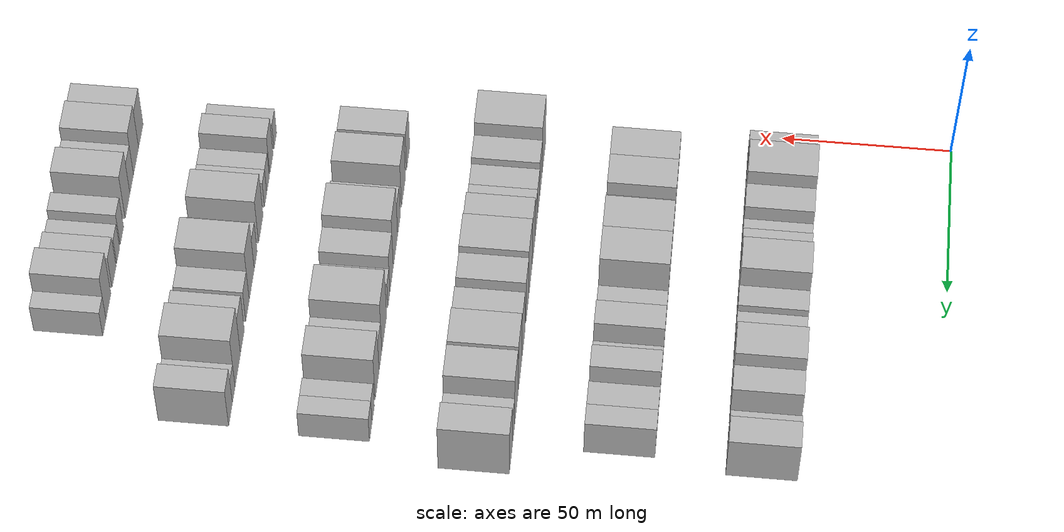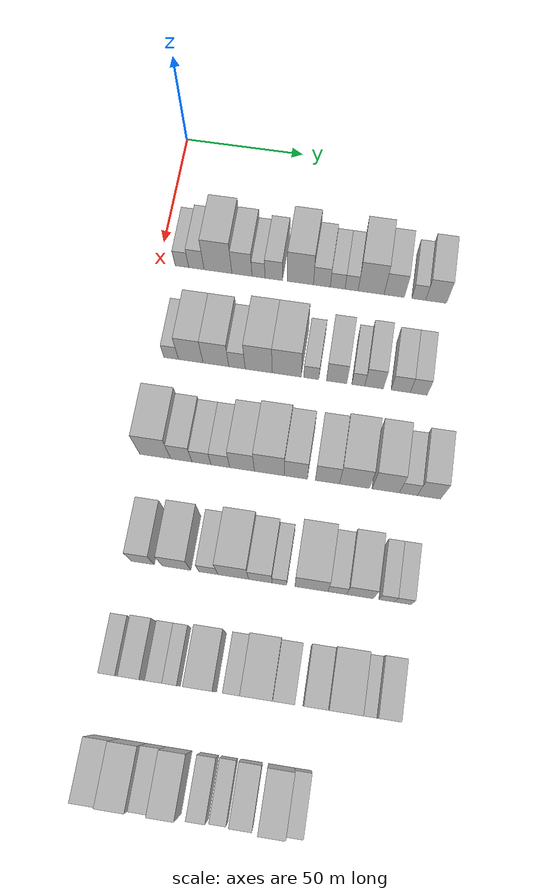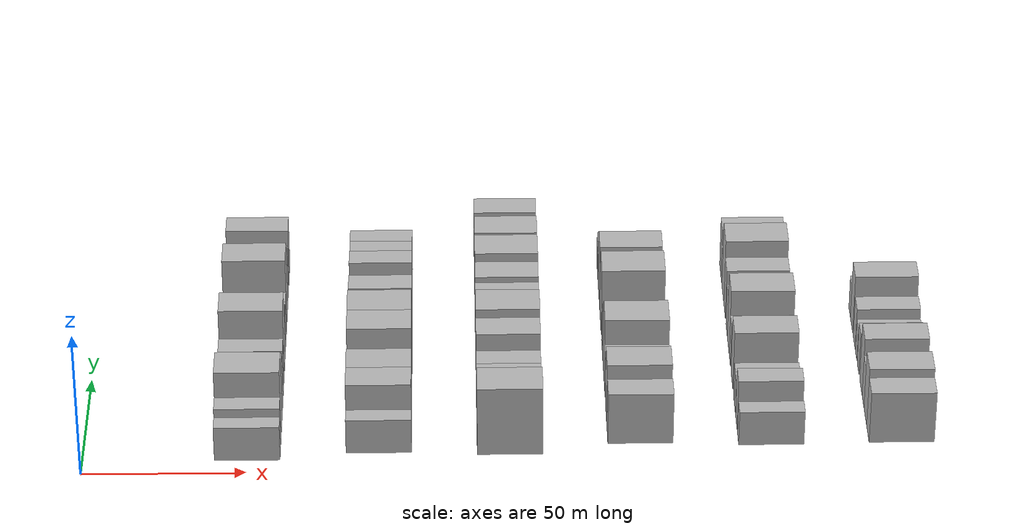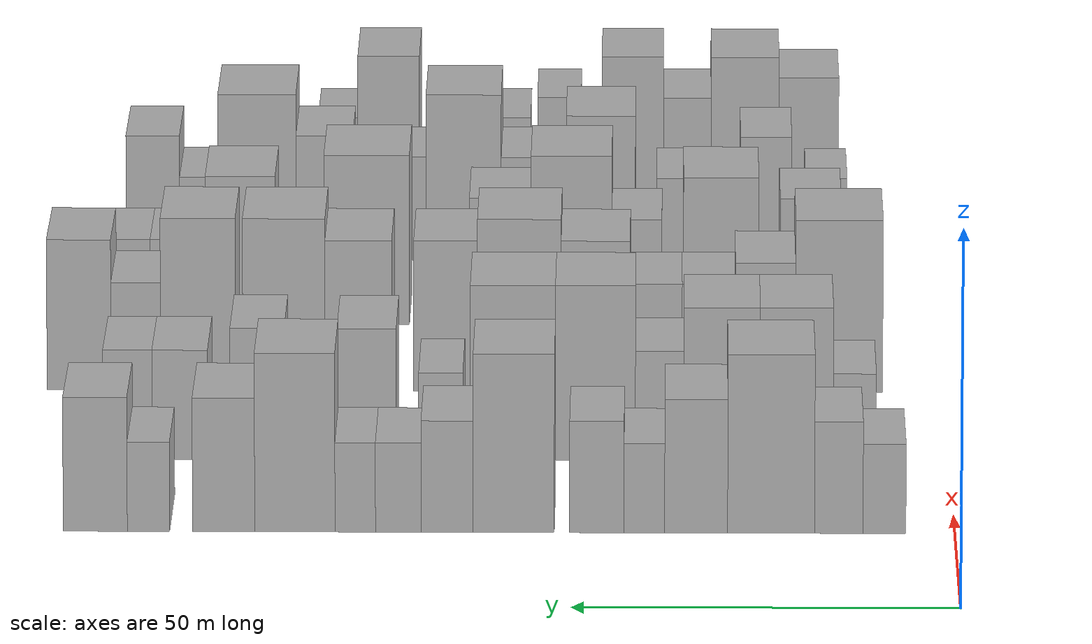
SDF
<sdf version="1.6">
 <world name="default">
  <model name="building_74">
   <static>1</static>
   <pose>50.0000 9.2794 0 0.000000 0.000000 0.000000</pose>
   <link name="link">
    <pose>0 0 6.00 0 0 0</pose>
    <collision name="collision"><geometry><box><size>20.0000 5.6171 12.0000</size></box></geometry></collision>
    <visual name="visual">
     <cast_shadows>0</cast_shadows>
     <geometry><box><size>20.0000 5.6171 12.0000</size></box></geometry>
     <material>
      <script>
       <uri>model://HANNAS_wall/materials/scripts</uri>
       <uri>model://HANNAS_wall/materials/textures</uri>
       <name>vrc/HANNAS_wall</name>
      </script>
     </material>
    </visual>
   </link>
  </model>
  <model name="building_75">
   <static>1</static>
   <pose>50.0000 15.2581 0 0.000000 0.000000 0.000000</pose>
   <link name="link">
    <pose>0 0 7.50 0 0 0</pose>
    <collision name="collision"><geometry><box><size>20.0000 6.3403 15.0000</size></box></geometry></collision>
    <visual name="visual">
     <cast_shadows>0</cast_shadows>
     <geometry><box><size>20.0000 6.3403 15.0000</size></box></geometry>
     <material>
      <script>
       <uri>model://HANNAS_wall/materials/scripts</uri>
       <uri>model://HANNAS_wall/materials/textures</uri>
       <name>vrc/HANNAS_wall</name>
      </script>
     </material>
    </visual>
   </link>
  </model>
  <model name="building_76">
   <static>1</static>
   <pose>50.0000 24.1122 0 0.000000 0.000000 0.000000</pose>
   <link name="link">
    <pose>0 0 12.00 0 0 0</pose>
    <collision name="collision"><geometry><box><size>20.0000 11.3678 24.0000</size></box></geometry></collision>
    <visual name="visual">
     <cast_shadows>0</cast_shadows>
     <geometry><box><size>20.0000 11.3678 24.0000</size></box></geometry>
     <material>
      <script>
       <uri>model://HANNAS_wall/materials/scripts</uri>
       <uri>model://HANNAS_wall/materials/textures</uri>
       <name>vrc/HANNAS_wall</name>
      </script>
     </material>
    </visual>
   </link>
  </model>
  <model name="building_77">
   <static>1</static>
   <pose>50.0000 33.9172 0 0.000000 0.000000 0.000000</pose>
   <link name="link">
    <pose>0 0 9.00 0 0 0</pose>
    <collision name="collision"><geometry><box><size>20.0000 8.2422 18.0000</size></box></geometry></collision>
    <visual name="visual">
     <cast_shadows>0</cast_shadows>
     <geometry><box><size>20.0000 8.2422 18.0000</size></box></geometry>
     <material>
      <script>
       <uri>model://HANNAS_wall/materials/scripts</uri>
       <uri>model://HANNAS_wall/materials/textures</uri>
       <name>vrc/HANNAS_wall</name>
      </script>
     </material>
    </visual>
   </link>
  </model>
  <model name="building_78">
   <static>1</static>
   <pose>50.0000 40.6999 0 0.000000 0.000000 0.000000</pose>
   <link name="link">
    <pose>0 0 6.00 0 0 0</pose>
    <collision name="collision"><geometry><box><size>20.0000 5.3231 12.0000</size></box></geometry></collision>
    <visual name="visual">
     <cast_shadows>0</cast_shadows>
     <geometry><box><size>20.0000 5.3231 12.0000</size></box></geometry>
     <material>
      <script>
       <uri>model://HANNAS_wall/materials/scripts</uri>
       <uri>model://HANNAS_wall/materials/textures</uri>
       <name>vrc/HANNAS_wall</name>
      </script>
     </material>
    </visual>
   </link>
  </model>
  <model name="building_79">
   <static>1</static>
   <pose>50.0000 46.9219 0 0.000000 0.000000 0.000000</pose>
   <link name="link">
    <pose>0 0 7.50 0 0 0</pose>
    <collision name="collision"><geometry><box><size>20.0000 7.1209 15.0000</size></box></geometry></collision>
    <visual name="visual">
     <cast_shadows>0</cast_shadows>
     <geometry><box><size>20.0000 7.1209 15.0000</size></box></geometry>
     <material>
      <script>
       <uri>model://HANNAS_wall/materials/scripts</uri>
       <uri>model://HANNAS_wall/materials/textures</uri>
       <name>vrc/HANNAS_wall</name>
      </script>
     </material>
    </visual>
   </link>
  </model>
  <model name="building_80">
   <static>1</static>
   <pose>50.0000 57.7926 0 0.000000 0.000000 0.000000</pose>
   <link name="link">
    <pose>0 0 12.00 0 0 0</pose>
    <collision name="collision"><geometry><box><size>20.0000 10.6205 24.0000</size></box></geometry></collision>
    <visual name="visual">
     <cast_shadows>0</cast_shadows>
     <geometry><box><size>20.0000 10.6205 24.0000</size></box></geometry>
     <material>
      <script>
       <uri>model://HANNAS_wall/materials/scripts</uri>
       <uri>model://HANNAS_wall/materials/textures</uri>
       <name>vrc/HANNAS_wall</name>
      </script>
     </material>
    </visual>
   </link>
  </model>
  <model name="building_81">
   <static>1</static>
   <pose>50.0000 66.5133 0 0.000000 0.000000 0.000000</pose>
   <link name="link">
    <pose>0 0 7.50 0 0 0</pose>
    <collision name="collision"><geometry><box><size>20.0000 6.8208 15.0000</size></box></geometry></collision>
    <visual name="visual">
     <cast_shadows>0</cast_shadows>
     <geometry><box><size>20.0000 6.8208 15.0000</size></box></geometry>
     <material>
      <script>
       <uri>model://HANNAS_wall/materials/scripts</uri>
       <uri>model://HANNAS_wall/materials/textures</uri>
       <name>vrc/HANNAS_wall</name>
      </script>
     </material>
    </visual>
   </link>
  </model>
  <model name="building_82">
   <static>1</static>
   <pose>50.0000 72.9092 0 0.000000 0.000000 0.000000</pose>
   <link name="link">
    <pose>0 0 6.00 0 0 0</pose>
    <collision name="collision"><geometry><box><size>20.0000 5.9709 12.0000</size></box></geometry></collision>
    <visual name="visual">
     <cast_shadows>0</cast_shadows>
     <geometry><box><size>20.0000 5.9709 12.0000</size></box></geometry>
     <material>
      <script>
       <uri>model://HANNAS_wall/materials/scripts</uri>
       <uri>model://HANNAS_wall/materials/textures</uri>
       <name>vrc/HANNAS_wall</name>
      </script>
     </material>
    </visual>
   </link>
  </model>
  <model name="building_83">
   <static>1</static>
   <pose>50.0000 78.5429 0 0.000000 0.000000 0.000000</pose>
   <link name="link">
    <pose>0 0 6.00 0 0 0</pose>
    <collision name="collision"><geometry><box><size>20.0000 5.2966 12.0000</size></box></geometry></collision>
    <visual name="visual">
     <cast_shadows>0</cast_shadows>
     <geometry><box><size>20.0000 5.2966 12.0000</size></box></geometry>
     <material>
      <script>
       <uri>model://HANNAS_wall/materials/scripts</uri>
       <uri>model://HANNAS_wall/materials/textures</uri>
       <name>vrc/HANNAS_wall</name>
      </script>
     </material>
    </visual>
   </link>
  </model>
  <model name="building_84">
   <static>1</static>
   <pose>50.0000 86.4467 0 0.000000 0.000000 0.000000</pose>
   <link name="link">
    <pose>0 0 12.00 0 0 0</pose>
    <collision name="collision"><geometry><box><size>20.0000 10.5110 24.0000</size></box></geometry></collision>
    <visual name="visual">
     <cast_shadows>0</cast_shadows>
     <geometry><box><size>20.0000 10.5110 24.0000</size></box></geometry>
     <material>
      <script>
       <uri>model://HANNAS_wall/materials/scripts</uri>
       <uri>model://HANNAS_wall/materials/textures</uri>
       <name>vrc/HANNAS_wall</name>
      </script>
     </material>
    </visual>
   </link>
  </model>
  <model name="building_85">
   <static>1</static>
   <pose>50.0000 95.7731 0 0.000000 0.000000 0.000000</pose>
   <link name="link">
    <pose>0 0 9.00 0 0 0</pose>
    <collision name="collision"><geometry><box><size>20.0000 8.1418 18.0000</size></box></geometry></collision>
    <visual name="visual">
     <cast_shadows>0</cast_shadows>
     <geometry><box><size>20.0000 8.1418 18.0000</size></box></geometry>
     <material>
      <script>
       <uri>model://HANNAS_wall/materials/scripts</uri>
       <uri>model://HANNAS_wall/materials/textures</uri>
       <name>vrc/HANNAS_wall</name>
      </script>
     </material>
    </visual>
   </link>
  </model>
  <model name="building_86">
   <static>1</static>
   <pose>50.0000 105.6185 0 0.000000 0.000000 0.000000</pose>
   <link name="link">
    <pose>0 0 6.00 0 0 0</pose>
    <collision name="collision"><geometry><box><size>20.0000 5.5490 12.0000</size></box></geometry></collision>
    <visual name="visual">
     <cast_shadows>0</cast_shadows>
     <geometry><box><size>20.0000 5.5490 12.0000</size></box></geometry>
     <material>
      <script>
       <uri>model://HANNAS_wall/materials/scripts</uri>
       <uri>model://HANNAS_wall/materials/textures</uri>
       <name>vrc/HANNAS_wall</name>
      </script>
     </material>
    </visual>
   </link>
  </model>
  <model name="building_87">
   <static>1</static>
   <pose>50.0000 112.5835 0 0.000000 0.000000 0.000000</pose>
   <link name="link">
    <pose>0 0 9.00 0 0 0</pose>
    <collision name="collision"><geometry><box><size>20.0000 8.3809 18.0000</size></box></geometry></collision>
    <visual name="visual">
     <cast_shadows>0</cast_shadows>
     <geometry><box><size>20.0000 8.3809 18.0000</size></box></geometry>
     <material>
      <script>
       <uri>model://HANNAS_wall/materials/scripts</uri>
       <uri>model://HANNAS_wall/materials/textures</uri>
       <name>vrc/HANNAS_wall</name>
      </script>
     </material>
    </visual>
   </link>
  </model>
  <model name="building_210">
   <static>1</static>
   <pose>90.0000 12.6955 0 0.000000 0.000000 0.000000</pose>
   <link name="link">
    <pose>0 0 6.00 0 0 0</pose>
    <collision name="collision"><geometry><box><size>20.0000 5.7510 12.0000</size></box></geometry></collision>
    <visual name="visual">
     <cast_shadows>0</cast_shadows>
     <geometry><box><size>20.0000 5.7510 12.0000</size></box></geometry>
     <material>
      <script>
       <uri>model://HANNAS_wall/materials/scripts</uri>
       <uri>model://HANNAS_wall/materials/textures</uri>
       <name>vrc/HANNAS_wall</name>
      </script>
     </material>
    </visual>
   </link>
  </model>
  <model name="building_211">
   <static>1</static>
   <pose>90.0000 20.4545 0 0.000000 0.000000 0.000000</pose>
   <link name="link">
    <pose>0 0 10.50 0 0 0</pose>
    <collision name="collision"><geometry><box><size>20.0000 9.7669 21.0000</size></box></geometry></collision>
    <visual name="visual">
     <cast_shadows>0</cast_shadows>
     <geometry><box><size>20.0000 9.7669 21.0000</size></box></geometry>
     <material>
      <script>
       <uri>model://HANNAS_wall/materials/scripts</uri>
       <uri>model://HANNAS_wall/materials/textures</uri>
       <name>vrc/HANNAS_wall</name>
      </script>
     </material>
    </visual>
   </link>
  </model>
  <model name="building_212">
   <static>1</static>
   <pose>90.0000 30.4173 0 0.000000 0.000000 0.000000</pose>
   <link name="link">
    <pose>0 0 10.50 0 0 0</pose>
    <collision name="collision"><geometry><box><size>20.0000 10.1586 21.0000</size></box></geometry></collision>
    <visual name="visual">
     <cast_shadows>0</cast_shadows>
     <geometry><box><size>20.0000 10.1586 21.0000</size></box></geometry>
     <material>
      <script>
       <uri>model://HANNAS_wall/materials/scripts</uri>
       <uri>model://HANNAS_wall/materials/textures</uri>
       <name>vrc/HANNAS_wall</name>
      </script>
     </material>
    </visual>
   </link>
  </model>
  <model name="building_213">
   <static>1</static>
   <pose>90.0000 38.7382 0 0.000000 0.000000 0.000000</pose>
   <link name="link">
    <pose>0 0 7.50 0 0 0</pose>
    <collision name="collision"><geometry><box><size>20.0000 6.4833 15.0000</size></box></geometry></collision>
    <visual name="visual">
     <cast_shadows>0</cast_shadows>
     <geometry><box><size>20.0000 6.4833 15.0000</size></box></geometry>
     <material>
      <script>
       <uri>model://HANNAS_wall/materials/scripts</uri>
       <uri>model://HANNAS_wall/materials/textures</uri>
       <name>vrc/HANNAS_wall</name>
      </script>
     </material>
    </visual>
   </link>
  </model>
  <model name="building_214">
   <static>1</static>
   <pose>90.0000 47.3163 0 0.000000 0.000000 0.000000</pose>
   <link name="link">
    <pose>0 0 12.00 0 0 0</pose>
    <collision name="collision"><geometry><box><size>20.0000 10.6729 24.0000</size></box></geometry></collision>
    <visual name="visual">
     <cast_shadows>0</cast_shadows>
     <geometry><box><size>20.0000 10.6729 24.0000</size></box></geometry>
     <material>
      <script>
       <uri>model://HANNAS_wall/materials/scripts</uri>
       <uri>model://HANNAS_wall/materials/textures</uri>
       <name>vrc/HANNAS_wall</name>
      </script>
     </material>
    </visual>
   </link>
  </model>
  <model name="building_215">
   <static>1</static>
   <pose>90.0000 58.3319 0 0.000000 0.000000 0.000000</pose>
   <link name="link">
    <pose>0 0 12.00 0 0 0</pose>
    <collision name="collision"><geometry><box><size>20.0000 11.3584 24.0000</size></box></geometry></collision>
    <visual name="visual">
     <cast_shadows>0</cast_shadows>
     <geometry><box><size>20.0000 11.3584 24.0000</size></box></geometry>
     <material>
      <script>
       <uri>model://HANNAS_wall/materials/scripts</uri>
       <uri>model://HANNAS_wall/materials/textures</uri>
       <name>vrc/HANNAS_wall</name>
      </script>
     </material>
    </visual>
   </link>
  </model>
  <model name="building_216">
   <static>1</static>
   <pose>90.0000 67.9603 0 0.000000 0.000000 0.000000</pose>
   <link name="link">
    <pose>0 0 6.00 0 0 0</pose>
    <collision name="collision"><geometry><box><size>20.0000 5.8984 12.0000</size></box></geometry></collision>
    <visual name="visual">
     <cast_shadows>0</cast_shadows>
     <geometry><box><size>20.0000 5.8984 12.0000</size></box></geometry>
     <material>
      <script>
       <uri>model://HANNAS_wall/materials/scripts</uri>
       <uri>model://HANNAS_wall/materials/textures</uri>
       <name>vrc/HANNAS_wall</name>
      </script>
     </material>
    </visual>
   </link>
  </model>
  <model name="building_217">
   <static>1</static>
   <pose>90.0000 77.8638 0 0.000000 0.000000 0.000000</pose>
   <link name="link">
    <pose>0 0 9.00 0 0 0</pose>
    <collision name="collision"><geometry><box><size>20.0000 7.9086 18.0000</size></box></geometry></collision>
    <visual name="visual">
     <cast_shadows>0</cast_shadows>
     <geometry><box><size>20.0000 7.9086 18.0000</size></box></geometry>
     <material>
      <script>
       <uri>model://HANNAS_wall/materials/scripts</uri>
       <uri>model://HANNAS_wall/materials/textures</uri>
       <name>vrc/HANNAS_wall</name>
      </script>
     </material>
    </visual>
   </link>
  </model>
  <model name="building_218">
   <static>1</static>
   <pose>90.0000 86.3379 0 0.000000 0.000000 0.000000</pose>
   <link name="link">
    <pose>0 0 6.00 0 0 0</pose>
    <collision name="collision"><geometry><box><size>20.0000 5.0396 12.0000</size></box></geometry></collision>
    <visual name="visual">
     <cast_shadows>0</cast_shadows>
     <geometry><box><size>20.0000 5.0396 12.0000</size></box></geometry>
     <material>
      <script>
       <uri>model://HANNAS_wall/materials/scripts</uri>
       <uri>model://HANNAS_wall/materials/textures</uri>
       <name>vrc/HANNAS_wall</name>
      </script>
     </material>
    </visual>
   </link>
  </model>
  <model name="building_219">
   <static>1</static>
   <pose>90.0000 92.4785 0 0.000000 0.000000 0.000000</pose>
   <link name="link">
    <pose>0 0 9.00 0 0 0</pose>
    <collision name="collision"><geometry><box><size>20.0000 7.2415 18.0000</size></box></geometry></collision>
    <visual name="visual">
     <cast_shadows>0</cast_shadows>
     <geometry><box><size>20.0000 7.2415 18.0000</size></box></geometry>
     <material>
      <script>
       <uri>model://HANNAS_wall/materials/scripts</uri>
       <uri>model://HANNAS_wall/materials/textures</uri>
       <name>vrc/HANNAS_wall</name>
      </script>
     </material>
    </visual>
   </link>
  </model>
  <model name="building_220">
   <static>1</static>
   <pose>90.0000 102.8114 0 0.000000 0.000000 0.000000</pose>
   <link name="link">
    <pose>0 0 7.50 0 0 0</pose>
    <collision name="collision"><geometry><box><size>20.0000 7.4245 15.0000</size></box></geometry></collision>
    <visual name="visual">
     <cast_shadows>0</cast_shadows>
     <geometry><box><size>20.0000 7.4245 15.0000</size></box></geometry>
     <material>
      <script>
       <uri>model://HANNAS_wall/materials/scripts</uri>
       <uri>model://HANNAS_wall/materials/textures</uri>
       <name>vrc/HANNAS_wall</name>
      </script>
     </material>
    </visual>
   </link>
  </model>
  <model name="building_221">
   <static>1</static>
   <pose>90.0000 109.8075 0 0.000000 0.000000 0.000000</pose>
   <link name="link">
    <pose>0 0 7.50 0 0 0</pose>
    <collision name="collision"><geometry><box><size>20.0000 6.5677 15.0000</size></box></geometry></collision>
    <visual name="visual">
     <cast_shadows>0</cast_shadows>
     <geometry><box><size>20.0000 6.5677 15.0000</size></box></geometry>
     <material>
      <script>
       <uri>model://HANNAS_wall/materials/scripts</uri>
       <uri>model://HANNAS_wall/materials/textures</uri>
       <name>vrc/HANNAS_wall</name>
      </script>
     </material>
    </visual>
   </link>
  </model>
  <model name="building_350">
   <static>1</static>
   <pose>130.0000 14.3309 0 0.000000 0.000000 0.000000</pose>
   <link name="link">
    <pose>0 0 12.00 0 0 0</pose>
    <collision name="collision"><geometry><box><size>20.0000 11.8804 24.0000</size></box></geometry></collision>
    <visual name="visual">
     <cast_shadows>0</cast_shadows>
     <geometry><box><size>20.0000 11.8804 24.0000</size></box></geometry>
     <material>
      <script>
       <uri>model://HANNAS_wall/materials/scripts</uri>
       <uri>model://HANNAS_wall/materials/textures</uri>
       <name>vrc/HANNAS_wall</name>
      </script>
     </material>
    </visual>
   </link>
  </model>
  <model name="building_351">
   <static>1</static>
   <pose>130.0000 24.3677 0 0.000000 0.000000 0.000000</pose>
   <link name="link">
    <pose>0 0 9.00 0 0 0</pose>
    <collision name="collision"><geometry><box><size>20.0000 8.1931 18.0000</size></box></geometry></collision>
    <visual name="visual">
     <cast_shadows>0</cast_shadows>
     <geometry><box><size>20.0000 8.1931 18.0000</size></box></geometry>
     <material>
      <script>
       <uri>model://HANNAS_wall/materials/scripts</uri>
       <uri>model://HANNAS_wall/materials/textures</uri>
       <name>vrc/HANNAS_wall</name>
      </script>
     </material>
    </visual>
   </link>
  </model>
  <model name="building_352">
   <static>1</static>
   <pose>130.0000 32.0866 0 0.000000 0.000000 0.000000</pose>
   <link name="link">
    <pose>0 0 7.50 0 0 0</pose>
    <collision name="collision"><geometry><box><size>20.0000 7.2446 15.0000</size></box></geometry></collision>
    <visual name="visual">
     <cast_shadows>0</cast_shadows>
     <geometry><box><size>20.0000 7.2446 15.0000</size></box></geometry>
     <material>
      <script>
       <uri>model://HANNAS_wall/materials/scripts</uri>
       <uri>model://HANNAS_wall/materials/textures</uri>
       <name>vrc/HANNAS_wall</name>
      </script>
     </material>
    </visual>
   </link>
  </model>
  <model name="building_353">
   <static>1</static>
   <pose>130.0000 39.2553 0 0.000000 0.000000 0.000000</pose>
   <link name="link">
    <pose>0 0 7.50 0 0 0</pose>
    <collision name="collision"><geometry><box><size>20.0000 7.0929 15.0000</size></box></geometry></collision>
    <visual name="visual">
     <cast_shadows>0</cast_shadows>
     <geometry><box><size>20.0000 7.0929 15.0000</size></box></geometry>
     <material>
      <script>
       <uri>model://HANNAS_wall/materials/scripts</uri>
       <uri>model://HANNAS_wall/materials/textures</uri>
       <name>vrc/HANNAS_wall</name>
      </script>
     </material>
    </visual>
   </link>
  </model>
  <model name="building_354">
   <static>1</static>
   <pose>130.0000 47.4995 0 0.000000 0.000000 0.000000</pose>
   <link name="link">
    <pose>0 0 10.50 0 0 0</pose>
    <collision name="collision"><geometry><box><size>20.0000 9.3954 21.0000</size></box></geometry></collision>
    <visual name="visual">
     <cast_shadows>0</cast_shadows>
     <geometry><box><size>20.0000 9.3954 21.0000</size></box></geometry>
     <material>
      <script>
       <uri>model://HANNAS_wall/materials/scripts</uri>
       <uri>model://HANNAS_wall/materials/textures</uri>
       <name>vrc/HANNAS_wall</name>
      </script>
     </material>
    </visual>
   </link>
  </model>
  <model name="building_355">
   <static>1</static>
   <pose>130.0000 57.8885 0 0.000000 0.000000 0.000000</pose>
   <link name="link">
    <pose>0 0 12.00 0 0 0</pose>
    <collision name="collision"><geometry><box><size>20.0000 11.3826 24.0000</size></box></geometry></collision>
    <visual name="visual">
     <cast_shadows>0</cast_shadows>
     <geometry><box><size>20.0000 11.3826 24.0000</size></box></geometry>
     <material>
      <script>
       <uri>model://HANNAS_wall/materials/scripts</uri>
       <uri>model://HANNAS_wall/materials/textures</uri>
       <name>vrc/HANNAS_wall</name>
      </script>
     </material>
    </visual>
   </link>
  </model>
  <model name="building_356">
   <static>1</static>
   <pose>130.0000 67.9218 0 0.000000 0.000000 0.000000</pose>
   <link name="link">
    <pose>0 0 10.50 0 0 0</pose>
    <collision name="collision"><geometry><box><size>20.0000 8.6841 21.0000</size></box></geometry></collision>
    <visual name="visual">
     <cast_shadows>0</cast_shadows>
     <geometry><box><size>20.0000 8.6841 21.0000</size></box></geometry>
     <material>
      <script>
       <uri>model://HANNAS_wall/materials/scripts</uri>
       <uri>model://HANNAS_wall/materials/textures</uri>
       <name>vrc/HANNAS_wall</name>
      </script>
     </material>
    </visual>
   </link>
  </model>
  <model name="building_357">
   <static>1</static>
   <pose>130.0000 79.8024 0 0.000000 0.000000 0.000000</pose>
   <link name="link">
    <pose>0 0 10.50 0 0 0</pose>
    <collision name="collision"><geometry><box><size>20.0000 9.0770 21.0000</size></box></geometry></collision>
    <visual name="visual">
     <cast_shadows>0</cast_shadows>
     <geometry><box><size>20.0000 9.0770 21.0000</size></box></geometry>
     <material>
      <script>
       <uri>model://HANNAS_wall/materials/scripts</uri>
       <uri>model://HANNAS_wall/materials/textures</uri>
       <name>vrc/HANNAS_wall</name>
      </script>
     </material>
    </visual>
   </link>
  </model>
  <model name="building_358">
   <static>1</static>
   <pose>130.0000 89.9496 0 0.000000 0.000000 0.000000</pose>
   <link name="link">
    <pose>0 0 12.00 0 0 0</pose>
    <collision name="collision"><geometry><box><size>20.0000 11.2175 24.0000</size></box></geometry></collision>
    <visual name="visual">
     <cast_shadows>0</cast_shadows>
     <geometry><box><size>20.0000 11.2175 24.0000</size></box></geometry>
     <material>
      <script>
       <uri>model://HANNAS_wall/materials/scripts</uri>
       <uri>model://HANNAS_wall/materials/textures</uri>
       <name>vrc/HANNAS_wall</name>
      </script>
     </material>
    </visual>
   </link>
  </model>
  <model name="building_359">
   <static>1</static>
   <pose>130.0000 101.6594 0 0.000000 0.000000 0.000000</pose>
   <link name="link">
    <pose>0 0 12.00 0 0 0</pose>
    <collision name="collision"><geometry><box><size>20.0000 10.2020 24.0000</size></box></geometry></collision>
    <visual name="visual">
     <cast_shadows>0</cast_shadows>
     <geometry><box><size>20.0000 10.2020 24.0000</size></box></geometry>
     <material>
      <script>
       <uri>model://HANNAS_wall/materials/scripts</uri>
       <uri>model://HANNAS_wall/materials/textures</uri>
       <name>vrc/HANNAS_wall</name>
      </script>
     </material>
    </visual>
   </link>
  </model>
  <model name="building_360">
   <static>1</static>
   <pose>130.0000 110.1379 0 0.000000 0.000000 0.000000</pose>
   <link name="link">
    <pose>0 0 7.50 0 0 0</pose>
    <collision name="collision"><geometry><box><size>20.0000 6.7548 15.0000</size></box></geometry></collision>
    <visual name="visual">
     <cast_shadows>0</cast_shadows>
     <geometry><box><size>20.0000 6.7548 15.0000</size></box></geometry>
     <material>
      <script>
       <uri>model://HANNAS_wall/materials/scripts</uri>
       <uri>model://HANNAS_wall/materials/textures</uri>
       <name>vrc/HANNAS_wall</name>
      </script>
     </material>
    </visual>
   </link>
  </model>
  <model name="building_361">
   <static>1</static>
   <pose>130.0000 117.8824 0 0.000000 0.000000 0.000000</pose>
   <link name="link">
    <pose>0 0 10.50 0 0 0</pose>
    <collision name="collision"><geometry><box><size>20.0000 8.7343 21.0000</size></box></geometry></collision>
    <visual name="visual">
     <cast_shadows>0</cast_shadows>
     <geometry><box><size>20.0000 8.7343 21.0000</size></box></geometry>
     <material>
      <script>
       <uri>model://HANNAS_wall/materials/scripts</uri>
       <uri>model://HANNAS_wall/materials/textures</uri>
       <name>vrc/HANNAS_wall</name>
      </script>
     </material>
    </visual>
   </link>
  </model>
  <model name="building_490">
   <static>1</static>
   <pose>170.0000 17.8568 0 0.000000 0.000000 0.000000</pose>
   <link name="link">
    <pose>0 0 9.00 0 0 0</pose>
    <collision name="collision"><geometry><box><size>20.0000 8.4364 18.0000</size></box></geometry></collision>
    <visual name="visual">
     <cast_shadows>0</cast_shadows>
     <geometry><box><size>20.0000 8.4364 18.0000</size></box></geometry>
     <material>
      <script>
       <uri>model://HANNAS_wall/materials/scripts</uri>
       <uri>model://HANNAS_wall/materials/textures</uri>
       <name>vrc/HANNAS_wall</name>
      </script>
     </material>
    </visual>
   </link>
  </model>
  <model name="building_491">
   <static>1</static>
   <pose>170.0000 30.2875 0 0.000000 0.000000 0.000000</pose>
   <link name="link">
    <pose>0 0 10.50 0 0 0</pose>
    <collision name="collision"><geometry><box><size>20.0000 10.4249 21.0000</size></box></geometry></collision>
    <visual name="visual">
     <cast_shadows>0</cast_shadows>
     <geometry><box><size>20.0000 10.4249 21.0000</size></box></geometry>
     <material>
      <script>
       <uri>model://HANNAS_wall/materials/scripts</uri>
       <uri>model://HANNAS_wall/materials/textures</uri>
       <name>vrc/HANNAS_wall</name>
      </script>
     </material>
    </visual>
   </link>
  </model>
  <model name="building_492">
   <static>1</static>
   <pose>170.0000 41.9742 0 0.000000 0.000000 0.000000</pose>
   <link name="link">
    <pose>0 0 7.50 0 0 0</pose>
    <collision name="collision"><geometry><box><size>20.0000 6.9485 15.0000</size></box></geometry></collision>
    <visual name="visual">
     <cast_shadows>0</cast_shadows>
     <geometry><box><size>20.0000 6.9485 15.0000</size></box></geometry>
     <material>
      <script>
       <uri>model://HANNAS_wall/materials/scripts</uri>
       <uri>model://HANNAS_wall/materials/textures</uri>
       <name>vrc/HANNAS_wall</name>
      </script>
     </material>
    </visual>
   </link>
  </model>
  <model name="building_493">
   <static>1</static>
   <pose>170.0000 51.0602 0 0.000000 0.000000 0.000000</pose>
   <link name="link">
    <pose>0 0 12.00 0 0 0</pose>
    <collision name="collision"><geometry><box><size>20.0000 11.2235 24.0000</size></box></geometry></collision>
    <visual name="visual">
     <cast_shadows>0</cast_shadows>
     <geometry><box><size>20.0000 11.2235 24.0000</size></box></geometry>
     <material>
      <script>
       <uri>model://HANNAS_wall/materials/scripts</uri>
       <uri>model://HANNAS_wall/materials/textures</uri>
       <name>vrc/HANNAS_wall</name>
      </script>
     </material>
    </visual>
   </link>
  </model>
  <model name="building_494">
   <static>1</static>
   <pose>170.0000 60.9486 0 0.000000 0.000000 0.000000</pose>
   <link name="link">
    <pose>0 0 9.00 0 0 0</pose>
    <collision name="collision"><geometry><box><size>20.0000 8.5533 18.0000</size></box></geometry></collision>
    <visual name="visual">
     <cast_shadows>0</cast_shadows>
     <geometry><box><size>20.0000 8.5533 18.0000</size></box></geometry>
     <material>
      <script>
       <uri>model://HANNAS_wall/materials/scripts</uri>
       <uri>model://HANNAS_wall/materials/textures</uri>
       <name>vrc/HANNAS_wall</name>
      </script>
     </material>
    </visual>
   </link>
  </model>
  <model name="building_495">
   <static>1</static>
   <pose>170.0000 67.8897 0 0.000000 0.000000 0.000000</pose>
   <link name="link">
    <pose>0 0 6.00 0 0 0</pose>
    <collision name="collision"><geometry><box><size>20.0000 5.3289 12.0000</size></box></geometry></collision>
    <visual name="visual">
     <cast_shadows>0</cast_shadows>
     <geometry><box><size>20.0000 5.3289 12.0000</size></box></geometry>
     <material>
      <script>
       <uri>model://HANNAS_wall/materials/scripts</uri>
       <uri>model://HANNAS_wall/materials/textures</uri>
       <name>vrc/HANNAS_wall</name>
      </script>
     </material>
    </visual>
   </link>
  </model>
  <model name="building_496">
   <static>1</static>
   <pose>170.0000 79.4907 0 0.000000 0.000000 0.000000</pose>
   <link name="link">
    <pose>0 0 12.00 0 0 0</pose>
    <collision name="collision"><geometry><box><size>20.0000 11.8733 24.0000</size></box></geometry></collision>
    <visual name="visual">
     <cast_shadows>0</cast_shadows>
     <geometry><box><size>20.0000 11.8733 24.0000</size></box></geometry>
     <material>
      <script>
       <uri>model://HANNAS_wall/materials/scripts</uri>
       <uri>model://HANNAS_wall/materials/textures</uri>
       <name>vrc/HANNAS_wall</name>
      </script>
     </material>
    </visual>
   </link>
  </model>
  <model name="building_497">
   <static>1</static>
   <pose>170.0000 88.8124 0 0.000000 0.000000 0.000000</pose>
   <link name="link">
    <pose>0 0 7.50 0 0 0</pose>
    <collision name="collision"><geometry><box><size>20.0000 6.7701 15.0000</size></box></geometry></collision>
    <visual name="visual">
     <cast_shadows>0</cast_shadows>
     <geometry><box><size>20.0000 6.7701 15.0000</size></box></geometry>
     <material>
      <script>
       <uri>model://HANNAS_wall/materials/scripts</uri>
       <uri>model://HANNAS_wall/materials/textures</uri>
       <name>vrc/HANNAS_wall</name>
      </script>
     </material>
    </visual>
   </link>
  </model>
  <model name="building_498">
   <static>1</static>
   <pose>170.0000 97.0498 0 0.000000 0.000000 0.000000</pose>
   <link name="link">
    <pose>0 0 10.50 0 0 0</pose>
    <collision name="collision"><geometry><box><size>20.0000 9.7046 21.0000</size></box></geometry></collision>
    <visual name="visual">
     <cast_shadows>0</cast_shadows>
     <geometry><box><size>20.0000 9.7046 21.0000</size></box></geometry>
     <material>
      <script>
       <uri>model://HANNAS_wall/materials/scripts</uri>
       <uri>model://HANNAS_wall/materials/textures</uri>
       <name>vrc/HANNAS_wall</name>
      </script>
     </material>
    </visual>
   </link>
  </model>
  <model name="building_499">
   <static>1</static>
   <pose>170.0000 106.7436 0 0.000000 0.000000 0.000000</pose>
   <link name="link">
    <pose>0 0 6.00 0 0 0</pose>
    <collision name="collision"><geometry><box><size>20.0000 5.6831 12.0000</size></box></geometry></collision>
    <visual name="visual">
     <cast_shadows>0</cast_shadows>
     <geometry><box><size>20.0000 5.6831 12.0000</size></box></geometry>
     <material>
      <script>
       <uri>model://HANNAS_wall/materials/scripts</uri>
       <uri>model://HANNAS_wall/materials/textures</uri>
       <name>vrc/HANNAS_wall</name>
      </script>
     </material>
    </visual>
   </link>
  </model>
  <model name="building_500">
   <static>1</static>
   <pose>170.0000 112.5825 0 0.000000 0.000000 0.000000</pose>
   <link name="link">
    <pose>0 0 6.00 0 0 0</pose>
    <collision name="collision"><geometry><box><size>20.0000 5.9945 12.0000</size></box></geometry></collision>
    <visual name="visual">
     <cast_shadows>0</cast_shadows>
     <geometry><box><size>20.0000 5.9945 12.0000</size></box></geometry>
     <material>
      <script>
       <uri>model://HANNAS_wall/materials/scripts</uri>
       <uri>model://HANNAS_wall/materials/textures</uri>
       <name>vrc/HANNAS_wall</name>
      </script>
     </material>
    </visual>
   </link>
  </model>
  <model name="building_635">
   <static>1</static>
   <pose>210.0000 15.2482 0 0.000000 0.000000 0.000000</pose>
   <link name="link">
    <pose>0 0 6.00 0 0 0</pose>
    <collision name="collision"><geometry><box><size>20.0000 5.8590 12.0000</size></box></geometry></collision>
    <visual name="visual">
     <cast_shadows>0</cast_shadows>
     <geometry><box><size>20.0000 5.8590 12.0000</size></box></geometry>
     <material>
      <script>
       <uri>model://HANNAS_wall/materials/scripts</uri>
       <uri>model://HANNAS_wall/materials/textures</uri>
       <name>vrc/HANNAS_wall</name>
      </script>
     </material>
    </visual>
   </link>
  </model>
  <model name="building_636">
   <static>1</static>
   <pose>210.0000 23.7936 0 0.000000 0.000000 0.000000</pose>
   <link name="link">
    <pose>0 0 9.00 0 0 0</pose>
    <collision name="collision"><geometry><box><size>20.0000 7.2319 18.0000</size></box></geometry></collision>
    <visual name="visual">
     <cast_shadows>0</cast_shadows>
     <geometry><box><size>20.0000 7.2319 18.0000</size></box></geometry>
     <material>
      <script>
       <uri>model://HANNAS_wall/materials/scripts</uri>
       <uri>model://HANNAS_wall/materials/textures</uri>
       <name>vrc/HANNAS_wall</name>
      </script>
     </material>
    </visual>
   </link>
  </model>
  <model name="building_637">
   <static>1</static>
   <pose>210.0000 31.3223 0 0.000000 0.000000 0.000000</pose>
   <link name="link">
    <pose>0 0 6.00 0 0 0</pose>
    <collision name="collision"><geometry><box><size>20.0000 5.8255 12.0000</size></box></geometry></collision>
    <visual name="visual">
     <cast_shadows>0</cast_shadows>
     <geometry><box><size>20.0000 5.8255 12.0000</size></box></geometry>
     <material>
      <script>
       <uri>model://HANNAS_wall/materials/scripts</uri>
       <uri>model://HANNAS_wall/materials/textures</uri>
       <name>vrc/HANNAS_wall</name>
      </script>
     </material>
    </visual>
   </link>
  </model>
  <model name="building_638">
   <static>1</static>
   <pose>210.0000 36.7588 0 0.000000 0.000000 0.000000</pose>
   <link name="link">
    <pose>0 0 6.00 0 0 0</pose>
    <collision name="collision"><geometry><box><size>20.0000 5.0475 12.0000</size></box></geometry></collision>
    <visual name="visual">
     <cast_shadows>0</cast_shadows>
     <geometry><box><size>20.0000 5.0475 12.0000</size></box></geometry>
     <material>
      <script>
       <uri>model://HANNAS_wall/materials/scripts</uri>
       <uri>model://HANNAS_wall/materials/textures</uri>
       <name>vrc/HANNAS_wall</name>
      </script>
     </material>
    </visual>
   </link>
  </model>
  <model name="building_639">
   <static>1</static>
   <pose>210.0000 47.1754 0 0.000000 0.000000 0.000000</pose>
   <link name="link">
    <pose>0 0 10.50 0 0 0</pose>
    <collision name="collision"><geometry><box><size>20.0000 9.7856 21.0000</size></box></geometry></collision>
    <visual name="visual">
     <cast_shadows>0</cast_shadows>
     <geometry><box><size>20.0000 9.7856 21.0000</size></box></geometry>
     <material>
      <script>
       <uri>model://HANNAS_wall/materials/scripts</uri>
       <uri>model://HANNAS_wall/materials/textures</uri>
       <name>vrc/HANNAS_wall</name>
      </script>
     </material>
    </visual>
   </link>
  </model>
  <model name="building_640">
   <static>1</static>
   <pose>210.0000 58.1677 0 0.000000 0.000000 0.000000</pose>
   <link name="link">
    <pose>0 0 7.50 0 0 0</pose>
    <collision name="collision"><geometry><box><size>20.0000 6.1991 15.0000</size></box></geometry></collision>
    <visual name="visual">
     <cast_shadows>0</cast_shadows>
     <geometry><box><size>20.0000 6.1991 15.0000</size></box></geometry>
     <material>
      <script>
       <uri>model://HANNAS_wall/materials/scripts</uri>
       <uri>model://HANNAS_wall/materials/textures</uri>
       <name>vrc/HANNAS_wall</name>
      </script>
     </material>
    </visual>
   </link>
  </model>
  <model name="building_641">
   <static>1</static>
   <pose>210.0000 66.5840 0 0.000000 0.000000 0.000000</pose>
   <link name="link">
    <pose>0 0 12.00 0 0 0</pose>
    <collision name="collision"><geometry><box><size>20.0000 10.6335 24.0000</size></box></geometry></collision>
    <visual name="visual">
     <cast_shadows>0</cast_shadows>
     <geometry><box><size>20.0000 10.6335 24.0000</size></box></geometry>
     <material>
      <script>
       <uri>model://HANNAS_wall/materials/scripts</uri>
       <uri>model://HANNAS_wall/materials/textures</uri>
       <name>vrc/HANNAS_wall</name>
      </script>
     </material>
    </visual>
   </link>
  </model>
  <model name="building_642">
   <static>1</static>
   <pose>210.0000 75.5859 0 0.000000 0.000000 0.000000</pose>
   <link name="link">
    <pose>0 0 7.50 0 0 0</pose>
    <collision name="collision"><geometry><box><size>20.0000 7.3701 15.0000</size></box></geometry></collision>
    <visual name="visual">
     <cast_shadows>0</cast_shadows>
     <geometry><box><size>20.0000 7.3701 15.0000</size></box></geometry>
     <material>
      <script>
       <uri>model://HANNAS_wall/materials/scripts</uri>
       <uri>model://HANNAS_wall/materials/textures</uri>
       <name>vrc/HANNAS_wall</name>
      </script>
     </material>
    </visual>
   </link>
  </model>
  <model name="building_643">
   <static>1</static>
   <pose>210.0000 86.2951 0 0.000000 0.000000 0.000000</pose>
   <link name="link">
    <pose>0 0 9.00 0 0 0</pose>
    <collision name="collision"><geometry><box><size>20.0000 8.0483 18.0000</size></box></geometry></collision>
    <visual name="visual">
     <cast_shadows>0</cast_shadows>
     <geometry><box><size>20.0000 8.0483 18.0000</size></box></geometry>
     <material>
      <script>
       <uri>model://HANNAS_wall/materials/scripts</uri>
       <uri>model://HANNAS_wall/materials/textures</uri>
       <name>vrc/HANNAS_wall</name>
      </script>
     </material>
    </visual>
   </link>
  </model>
  <model name="building_644">
   <static>1</static>
   <pose>210.0000 95.8348 0 0.000000 0.000000 0.000000</pose>
   <link name="link">
    <pose>0 0 12.00 0 0 0</pose>
    <collision name="collision"><geometry><box><size>20.0000 11.0311 24.0000</size></box></geometry></collision>
    <visual name="visual">
     <cast_shadows>0</cast_shadows>
     <geometry><box><size>20.0000 11.0311 24.0000</size></box></geometry>
     <material>
      <script>
       <uri>model://HANNAS_wall/materials/scripts</uri>
       <uri>model://HANNAS_wall/materials/textures</uri>
       <name>vrc/HANNAS_wall</name>
      </script>
     </material>
    </visual>
   </link>
  </model>
  <model name="building_645">
   <static>1</static>
   <pose>210.0000 104.0772 0 0.000000 0.000000 0.000000</pose>
   <link name="link">
    <pose>0 0 6.00 0 0 0</pose>
    <collision name="collision"><geometry><box><size>20.0000 5.4536 12.0000</size></box></geometry></collision>
    <visual name="visual">
     <cast_shadows>0</cast_shadows>
     <geometry><box><size>20.0000 5.4536 12.0000</size></box></geometry>
     <material>
      <script>
       <uri>model://HANNAS_wall/materials/scripts</uri>
       <uri>model://HANNAS_wall/materials/textures</uri>
       <name>vrc/HANNAS_wall</name>
      </script>
     </material>
    </visual>
   </link>
  </model>
  <model name="building_646">
   <static>1</static>
   <pose>210.0000 110.5902 0 0.000000 0.000000 0.000000</pose>
   <link name="link">
    <pose>0 0 9.00 0 0 0</pose>
    <collision name="collision"><geometry><box><size>20.0000 7.5724 18.0000</size></box></geometry></collision>
    <visual name="visual">
     <cast_shadows>0</cast_shadows>
     <geometry><box><size>20.0000 7.5724 18.0000</size></box></geometry>
     <material>
      <script>
       <uri>model://HANNAS_wall/materials/scripts</uri>
       <uri>model://HANNAS_wall/materials/textures</uri>
       <name>vrc/HANNAS_wall</name>
      </script>
     </material>
    </visual>
   </link>
  </model>
  <model name="building_776">
   <static>1</static>
   <pose>250.0000 17.3669 0 0.000000 0.000000 0.000000</pose>
   <link name="link">
    <pose>0 0 9.00 0 0 0</pose>
    <collision name="collision"><geometry><box><size>20.0000 8.6121 18.0000</size></box></geometry></collision>
    <visual name="visual">
     <cast_shadows>0</cast_shadows>
     <geometry><box><size>20.0000 8.6121 18.0000</size></box></geometry>
     <material>
      <script>
       <uri>model://HANNAS_wall/materials/scripts</uri>
       <uri>model://HANNAS_wall/materials/textures</uri>
       <name>vrc/HANNAS_wall</name>
      </script>
     </material>
    </visual>
   </link>
  </model>
  <model name="building_777">
   <static>1</static>
   <pose>250.0000 26.5650 0 0.000000 0.000000 0.000000</pose>
   <link name="link">
    <pose>0 0 10.50 0 0 0</pose>
    <collision name="collision"><geometry><box><size>20.0000 9.7842 21.0000</size></box></geometry></collision>
    <visual name="visual">
     <cast_shadows>0</cast_shadows>
     <geometry><box><size>20.0000 9.7842 21.0000</size></box></geometry>
     <material>
      <script>
       <uri>model://HANNAS_wall/materials/scripts</uri>
       <uri>model://HANNAS_wall/materials/textures</uri>
       <name>vrc/HANNAS_wall</name>
      </script>
     </material>
    </visual>
   </link>
  </model>
  <model name="building_778">
   <static>1</static>
   <pose>250.0000 34.8734 0 0.000000 0.000000 0.000000</pose>
   <link name="link">
    <pose>0 0 7.50 0 0 0</pose>
    <collision name="collision"><geometry><box><size>20.0000 6.8326 15.0000</size></box></geometry></collision>
    <visual name="visual">
     <cast_shadows>0</cast_shadows>
     <geometry><box><size>20.0000 6.8326 15.0000</size></box></geometry>
     <material>
      <script>
       <uri>model://HANNAS_wall/materials/scripts</uri>
       <uri>model://HANNAS_wall/materials/textures</uri>
       <name>vrc/HANNAS_wall</name>
      </script>
     </material>
    </visual>
   </link>
  </model>
  <model name="building_779">
   <static>1</static>
   <pose>250.0000 42.7412 0 0.000000 0.000000 0.000000</pose>
   <link name="link">
    <pose>0 0 10.50 0 0 0</pose>
    <collision name="collision"><geometry><box><size>20.0000 8.9031 21.0000</size></box></geometry></collision>
    <visual name="visual">
     <cast_shadows>0</cast_shadows>
     <geometry><box><size>20.0000 8.9031 21.0000</size></box></geometry>
     <material>
      <script>
       <uri>model://HANNAS_wall/materials/scripts</uri>
       <uri>model://HANNAS_wall/materials/textures</uri>
       <name>vrc/HANNAS_wall</name>
      </script>
     </material>
    </visual>
   </link>
  </model>
  <model name="building_780">
   <static>1</static>
   <pose>250.0000 53.3356 0 0.000000 0.000000 0.000000</pose>
   <link name="link">
    <pose>0 0 7.50 0 0 0</pose>
    <collision name="collision"><geometry><box><size>20.0000 6.2856 15.0000</size></box></geometry></collision>
    <visual name="visual">
     <cast_shadows>0</cast_shadows>
     <geometry><box><size>20.0000 6.2856 15.0000</size></box></geometry>
     <material>
      <script>
       <uri>model://HANNAS_wall/materials/scripts</uri>
       <uri>model://HANNAS_wall/materials/textures</uri>
       <name>vrc/HANNAS_wall</name>
      </script>
     </material>
    </visual>
   </link>
  </model>
  <model name="building_781">
   <static>1</static>
   <pose>250.0000 60.2595 0 0.000000 0.000000 0.000000</pose>
   <link name="link">
    <pose>0 0 6.00 0 0 0</pose>
    <collision name="collision"><geometry><box><size>20.0000 5.5622 12.0000</size></box></geometry></collision>
    <visual name="visual">
     <cast_shadows>0</cast_shadows>
     <geometry><box><size>20.0000 5.5622 12.0000</size></box></geometry>
     <material>
      <script>
       <uri>model://HANNAS_wall/materials/scripts</uri>
       <uri>model://HANNAS_wall/materials/textures</uri>
       <name>vrc/HANNAS_wall</name>
      </script>
     </material>
    </visual>
   </link>
  </model>
  <model name="building_782">
   <static>1</static>
   <pose>250.0000 67.7843 0 0.000000 0.000000 0.000000</pose>
   <link name="link">
    <pose>0 0 7.50 0 0 0</pose>
    <collision name="collision"><geometry><box><size>20.0000 7.4874 15.0000</size></box></geometry></collision>
    <visual name="visual">
     <cast_shadows>0</cast_shadows>
     <geometry><box><size>20.0000 7.4874 15.0000</size></box></geometry>
     <material>
      <script>
       <uri>model://HANNAS_wall/materials/scripts</uri>
       <uri>model://HANNAS_wall/materials/textures</uri>
       <name>vrc/HANNAS_wall</name>
      </script>
     </material>
    </visual>
   </link>
  </model>
  <model name="building_783">
   <static>1</static>
   <pose>250.0000 77.9652 0 0.000000 0.000000 0.000000</pose>
   <link name="link">
    <pose>0 0 10.50 0 0 0</pose>
    <collision name="collision"><geometry><box><size>20.0000 8.8743 21.0000</size></box></geometry></collision>
    <visual name="visual">
     <cast_shadows>0</cast_shadows>
     <geometry><box><size>20.0000 8.8743 21.0000</size></box></geometry>
     <material>
      <script>
       <uri>model://HANNAS_wall/materials/scripts</uri>
       <uri>model://HANNAS_wall/materials/textures</uri>
       <name>vrc/HANNAS_wall</name>
      </script>
     </material>
    </visual>
   </link>
  </model>
  <model name="building_784">
   <static>1</static>
   <pose>250.0000 85.2599 0 0.000000 0.000000 0.000000</pose>
   <link name="link">
    <pose>0 0 6.00 0 0 0</pose>
    <collision name="collision"><geometry><box><size>20.0000 5.7151 12.0000</size></box></geometry></collision>
    <visual name="visual">
     <cast_shadows>0</cast_shadows>
     <geometry><box><size>20.0000 5.7151 12.0000</size></box></geometry>
     <material>
      <script>
       <uri>model://HANNAS_wall/materials/scripts</uri>
       <uri>model://HANNAS_wall/materials/textures</uri>
       <name>vrc/HANNAS_wall</name>
      </script>
     </material>
    </visual>
   </link>
  </model>
 </world>
</sdf>
